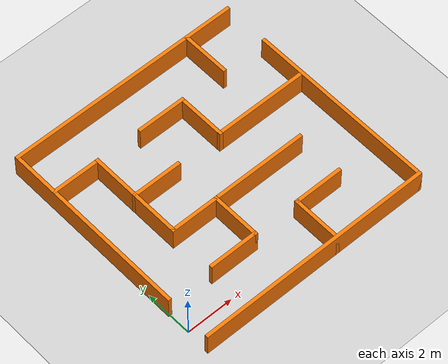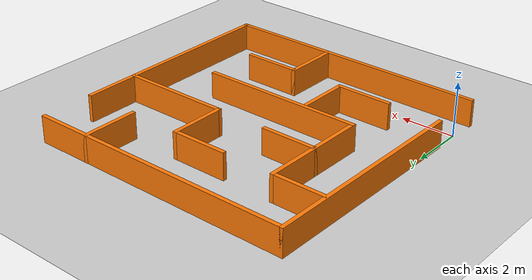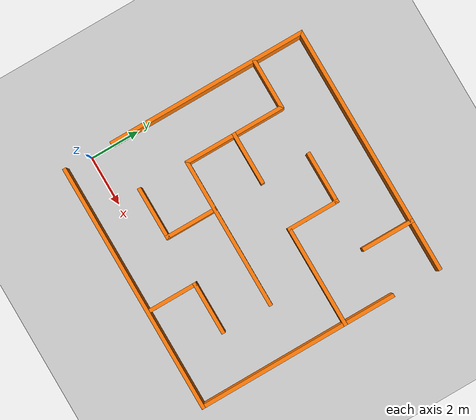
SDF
<sdf version="1.7">
 <world name="default">
  <plugin name="gazebo_ros_state" filename="libgazebo_ros_state.so"><update_rate>50.0</update_rate></plugin>
  <light name="sun" type="directional">
   <pose>0 0 10 0 -0 0</pose>
   <diffuse>0.8 0.8 0.8 1</diffuse>
   <specular>0.2 0.2 0.2 1</specular>
   <attenuation>
    <range>1000</range>
    <constant>0.9</constant>
    <linear>0.01</linear>
    <quadratic>0.001</quadratic>
   </attenuation>
   <direction>-0.5 0.1 -0.9</direction>
   <spot><inner_angle>0</inner_angle><outer_angle>0</outer_angle><falloff>0</falloff></spot>
  </light>
  <model name="ground_plane">
   <static>1</static>
   <link name="link">
    <collision name="collision">
     <geometry><plane><normal>0 0 1</normal><size>100 100</size></plane></geometry>
     <surface><friction><ode><mu>100</mu><mu2>50</mu2></ode></friction></surface>
    </collision>
    <visual name="visual">
     <cast_shadows>0</cast_shadows>
     <geometry><plane><normal>0 0 1</normal><size>100 100</size></plane></geometry>
     <material>
      <script><uri>file://media/materials/scripts/gazebo.material</uri><name>Gazebo/Grey</name></script>
     </material>
    </visual>
   </link>
  </model>
  <gravity>0 0 -9.8</gravity>
  <magnetic_field>6e-06 2.3e-05 -4.2e-05</magnetic_field>
  <atmosphere type="adiabatic"/>
  <physics type="ode">
   <max_step_size>0.001</max_step_size>
   <real_time_factor>1</real_time_factor>
   <real_time_update_rate>1000</real_time_update_rate>
  </physics>
  <scene><ambient>0.4 0.4 0.4 1</ambient><background>0.7 0.7 0.7 1</background><shadows>1</shadows></scene>
  <audio><device>default</device></audio>
  <spherical_coordinates>
   <surface_model>EARTH_WGS84</surface_model>
   <latitude_deg>0</latitude_deg>
   <longitude_deg>0</longitude_deg>
   <elevation>0</elevation>
   <heading_deg>0</heading_deg>
  </spherical_coordinates>
  <model name="Maze-Map">
   <pose>5 4 0 0 -0 0</pose>
   <link name="Wall_0">
    <collision name="Wall_0_Collision">
     <geometry><box><size>10.15 0.15 1</size></box></geometry>
     <pose>0 0 0.5 0 -0 0</pose>
    </collision>
    <visual name="Wall_0_Visual">
     <pose>0 0 0.5 0 -0 0</pose>
     <geometry><box><size>10.15 0.15 1</size></box></geometry>
     <material>
      <script><uri>file://media/materials/scripts/gazebo.material</uri><name>Gazebo/Grey</name></script>
      <ambient>0.996078 0.47451 0.0196078 1</ambient>
     </material>
     <meta><layer>0</layer></meta>
    </visual>
    <pose>-0 -5 0 0 -0 0</pose>
   </link>
   <link name="Wall_10">
    <collision name="Wall_10_Collision">
     <geometry><box><size>2.15 0.15 1</size></box></geometry>
     <pose>0 0 0.5 0 -0 0</pose>
    </collision>
    <visual name="Wall_10_Visual">
     <pose>0 0 0.5 0 -0 0</pose>
     <geometry><box><size>2.15 0.15 1</size></box></geometry>
     <material>
      <script><uri>file://media/materials/scripts/gazebo.material</uri><name>Gazebo/Grey</name></script>
      <ambient>0.996078 0.47451 0.0196078 1</ambient>
     </material>
     <meta><layer>0</layer></meta>
    </visual>
    <pose>2 -3 0 0 -0 0</pose>
   </link>
   <link name="Wall_12">
    <collision name="Wall_12_Collision">
     <geometry><box><size>2.15 0.15 1</size></box></geometry>
     <pose>0 0 0.5 0 -0 0</pose>
    </collision>
    <visual name="Wall_12_Visual">
     <pose>0 0 0.5 0 -0 0</pose>
     <geometry><box><size>2.15 0.15 1</size></box></geometry>
     <material>
      <script><uri>file://media/materials/scripts/gazebo.material</uri><name>Gazebo/Grey</name></script>
      <ambient>0.996078 0.47451 0.0196078 1</ambient>
     </material>
     <meta><layer>0</layer></meta>
    </visual>
    <pose>-4 3 0 0 -0 0</pose>
   </link>
   <link name="Wall_14">
    <collision name="Wall_14_Collision">
     <geometry><box><size>4.15 0.15 1</size></box></geometry>
     <pose>0 0 0.5 0 -0 0</pose>
    </collision>
    <visual name="Wall_14_Visual">
     <pose>0 0 0.5 0 -0 0</pose>
     <geometry><box><size>4.15 0.15 1</size></box></geometry>
     <material>
      <script><uri>file://media/materials/scripts/gazebo.material</uri><name>Gazebo/Grey</name></script>
      <ambient>0.996078 0.47451 0.0196078 1</ambient>
     </material>
     <meta><layer>0</layer></meta>
    </visual>
    <pose>-3 1 0 0 -0 -1.5708</pose>
   </link>
   <link name="Wall_16">
    <collision name="Wall_16_Collision">
     <geometry><box><size>6.15 0.15 1</size></box></geometry>
     <pose>0 0 0.5 0 -0 0</pose>
    </collision>
    <visual name="Wall_16_Visual">
     <pose>0 0 0.5 0 -0 0</pose>
     <geometry><box><size>6.15 0.15 1</size></box></geometry>
     <material>
      <script><uri>file://media/materials/scripts/gazebo.material</uri><name>Gazebo/Grey</name></script>
      <ambient>0.996078 0.47451 0.0196078 1</ambient>
     </material>
     <meta><layer>0</layer></meta>
    </visual>
    <pose>-0 -1 0 0 -0 0</pose>
   </link>
   <link name="Wall_18">
    <collision name="Wall_18_Collision">
     <geometry><box><size>2.15 0.15 1</size></box></geometry>
     <pose>0 0 0.5 0 -0 0</pose>
    </collision>
    <visual name="Wall_18_Visual">
     <pose>0 0 0.5 0 -0 0</pose>
     <geometry><box><size>2.15 0.15 1</size></box></geometry>
     <material>
      <script><uri>file://media/materials/scripts/gazebo.material</uri><name>Gazebo/Grey</name></script>
      <ambient>0.996078 0.47451 0.0196078 1</ambient>
     </material>
     <meta><layer>0</layer></meta>
    </visual>
    <pose>-2 1 0 0 -0 0</pose>
   </link>
   <link name="Wall_2">
    <collision name="Wall_2_Collision">
     <geometry><box><size>8.15 0.15 1</size></box></geometry>
     <pose>0 0 0.5 0 -0 0</pose>
    </collision>
    <visual name="Wall_2_Visual">
     <pose>0 0 0.5 0 -0 0</pose>
     <geometry><box><size>8.15 0.15 1</size></box></geometry>
     <material>
      <script><uri>file://media/materials/scripts/gazebo.material</uri><name>Gazebo/Grey</name></script>
      <ambient>0.996078 0.47451 0.0196078 1</ambient>
     </material>
     <meta><layer>0</layer></meta>
    </visual>
    <pose>-5 1 0 0 -0 1.5708</pose>
   </link>
   <link name="Wall_20">
    <collision name="Wall_20_Collision">
     <geometry><box><size>2.15 0.15 1</size></box></geometry>
     <pose>0 0 0.5 0 -0 0</pose>
    </collision>
    <visual name="Wall_20_Visual">
     <pose>0 0 0.5 0 -0 0</pose>
     <geometry><box><size>2.15 0.15 1</size></box></geometry>
     <material>
      <script><uri>file://media/materials/scripts/gazebo.material</uri><name>Gazebo/Grey</name></script>
      <ambient>0.996078 0.47451 0.0196078 1</ambient>
     </material>
     <meta><layer>0</layer></meta>
    </visual>
    <pose>-1 -2 0 0 -0 -1.5708</pose>
   </link>
   <link name="Wall_22">
    <collision name="Wall_22_Collision">
     <geometry><box><size>2.15 0.15 1</size></box></geometry>
     <pose>0 0 0.5 0 -0 0</pose>
    </collision>
    <visual name="Wall_22_Visual">
     <pose>0 0 0.5 0 -0 0</pose>
     <geometry><box><size>2.15 0.15 1</size></box></geometry>
     <material>
      <script><uri>file://media/materials/scripts/gazebo.material</uri><name>Gazebo/Grey</name></script>
      <ambient>0.996078 0.47451 0.0196078 1</ambient>
     </material>
     <meta><layer>0</layer></meta>
    </visual>
    <pose>-2 -3 0 0 -0 3.14159</pose>
   </link>
   <link name="Wall_24">
    <collision name="Wall_24_Collision">
     <geometry><box><size>2.15 0.15 1</size></box></geometry>
     <pose>0 0 0.5 0 -0 0</pose>
    </collision>
    <visual name="Wall_24_Visual">
     <pose>0 0 0.5 0 -0 0</pose>
     <geometry><box><size>2.15 0.15 1</size></box></geometry>
     <material>
      <script><uri>file://media/materials/scripts/gazebo.material</uri><name>Gazebo/Grey</name></script>
      <ambient>0.996078 0.47451 0.0196078 1</ambient>
     </material>
     <meta><layer>0</layer></meta>
    </visual>
    <pose>3 4 0 0 -0 -1.5708</pose>
   </link>
   <link name="Wall_26">
    <collision name="Wall_26_Collision">
     <geometry><box><size>4.15 0.15 1</size></box></geometry>
     <pose>0 0 0.5 0 -0 0</pose>
    </collision>
    <visual name="Wall_26_Visual">
     <pose>0 0 0.5 0 -0 0</pose>
     <geometry><box><size>4.15 0.15 1</size></box></geometry>
     <material>
      <script><uri>file://media/materials/scripts/gazebo.material</uri><name>Gazebo/Grey</name></script>
      <ambient>0.996078 0.47451 0.0196078 1</ambient>
     </material>
     <meta><layer>0</layer></meta>
    </visual>
    <pose>3 1 0 0 -0 3.14159</pose>
   </link>
   <link name="Wall_28">
    <collision name="Wall_28_Collision">
     <geometry><box><size>2.15 0.15 1</size></box></geometry>
     <pose>0 0 0.5 0 -0 0</pose>
    </collision>
    <visual name="Wall_28_Visual">
     <pose>0 0 0.5 0 -0 0</pose>
     <geometry><box><size>2.15 0.15 1</size></box></geometry>
     <material>
      <script><uri>file://media/materials/scripts/gazebo.material</uri><name>Gazebo/Grey</name></script>
      <ambient>0.996078 0.47451 0.0196078 1</ambient>
     </material>
     <meta><layer>0</layer></meta>
    </visual>
    <pose>1 2 0 0 -0 1.5708</pose>
   </link>
   <link name="Wall_30">
    <collision name="Wall_30_Collision">
     <geometry><box><size>2.15 0.15 1</size></box></geometry>
     <pose>0 0 0.5 0 -0 0</pose>
    </collision>
    <visual name="Wall_30_Visual">
     <pose>0 0 0.5 0 -0 0</pose>
     <geometry><box><size>2.15 0.15 1</size></box></geometry>
     <material>
      <script><uri>file://media/materials/scripts/gazebo.material</uri><name>Gazebo/Grey</name></script>
      <ambient>0.996078 0.47451 0.0196078 1</ambient>
     </material>
     <meta><layer>0</layer></meta>
    </visual>
    <pose>-0 3 0 0 -0 3.14159</pose>
   </link>
   <link name="Wall_4">
    <collision name="Wall_4_Collision">
     <geometry><box><size>10.15 0.15 1</size></box></geometry>
     <pose>0 0 0.5 0 -0 0</pose>
    </collision>
    <visual name="Wall_4_Visual">
     <pose>0 0 0.5 0 -0 0</pose>
     <geometry><box><size>10.15 0.15 1</size></box></geometry>
     <material>
      <script><uri>file://media/materials/scripts/gazebo.material</uri><name>Gazebo/Grey</name></script>
      <ambient>0.996078 0.47451 0.0196078 1</ambient>
     </material>
     <meta><layer>0</layer></meta>
    </visual>
    <pose>-0 5 0 0 -0 0</pose>
   </link>
   <link name="Wall_6">
    <collision name="Wall_6_Collision">
     <geometry><box><size>8.15 0.15 1</size></box></geometry>
     <pose>0 0 0.5 0 -0 0</pose>
    </collision>
    <visual name="Wall_6_Visual">
     <pose>0 0 0.5 0 -0 0</pose>
     <geometry><box><size>8.15 0.15 1</size></box></geometry>
     <material>
      <script><uri>file://media/materials/scripts/gazebo.material</uri><name>Gazebo/Grey</name></script>
      <ambient>0.996078 0.47451 0.0196078 1</ambient>
     </material>
     <meta><layer>0</layer></meta>
    </visual>
    <pose>5 -1 0 0 -0 -1.5708</pose>
   </link>
   <link name="Wall_8">
    <collision name="Wall_8_Collision">
     <geometry><box><size>2.15 0.15 1</size></box></geometry>
     <pose>0 0 0.5 0 -0 0</pose>
    </collision>
    <visual name="Wall_8_Visual">
     <pose>0 0 0.5 0 -0 0</pose>
     <geometry><box><size>2.15 0.15 1</size></box></geometry>
     <material>
      <script><uri>file://media/materials/scripts/gazebo.material</uri><name>Gazebo/Grey</name></script>
      <ambient>0.996078 0.47451 0.0196078 1</ambient>
     </material>
     <meta><layer>0</layer></meta>
    </visual>
    <pose>1 -4 0 0 -0 1.5708</pose>
   </link>
   <static>1</static>
  </model>
 </world>
</sdf>
